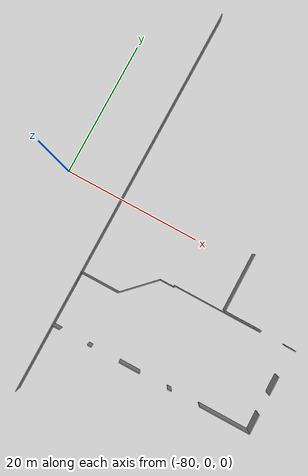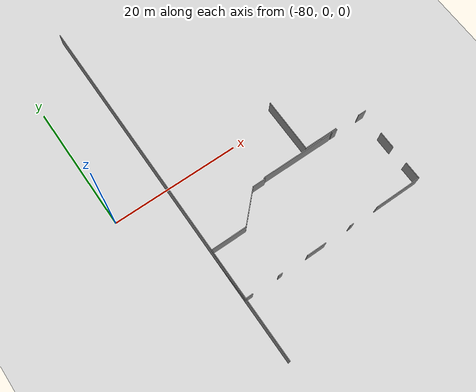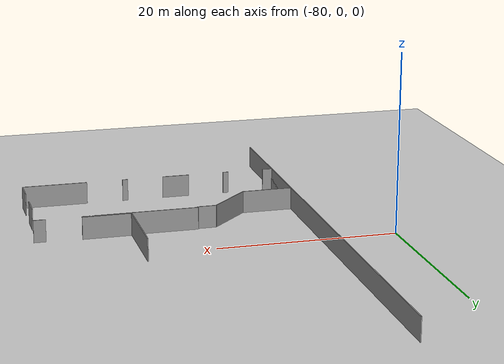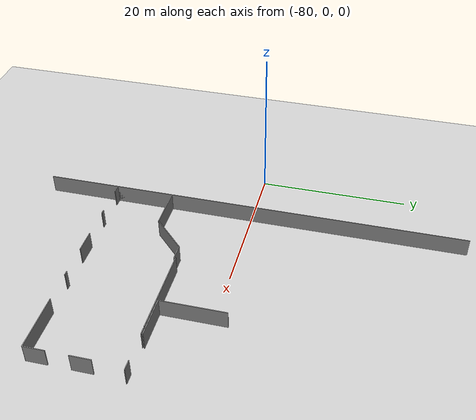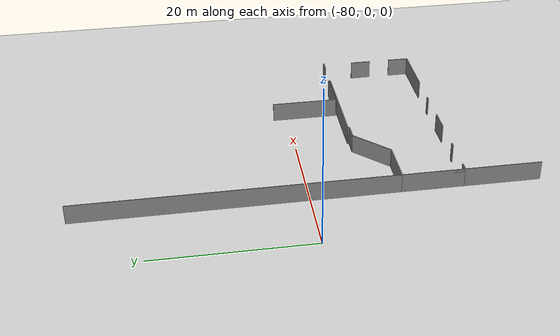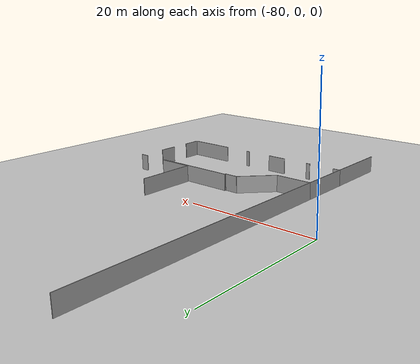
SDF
<sdf version="1.6">
 <world name="default">
  <model name="ground_plane">
   <static>1</static>
   <link name="link">
    <collision name="collision">
     <geometry><plane><normal>0 0 1</normal><size>100 100</size></plane></geometry>
     <surface><friction><ode><mu>100</mu><mu2>50</mu2></ode></friction></surface>
    </collision>
    <visual name="visual">
     <cast_shadows>0</cast_shadows>
     <geometry><plane><normal>0 0 1</normal><size>100 100</size></plane></geometry>
     <material>
      <script><uri>file://media/materials/scripts/gazebo.material</uri><name>Gazebo/Grey</name></script>
     </material>
    </visual>
   </link>
  </model>
  <model name="50041169">
   <static>1</static>
   <link name="Wall_36">
    <collision name="Wall_36_Collision">
     <geometry><box><size>5.38318967159 0.1 2.5</size></box></geometry>
     <pose>2.69159483579 0 1.25 0 0 0</pose>
    </collision>
    <visual name="Wall_36_Visual">
     <pose>2.69159483579 0 1.25 0 0 0</pose>
     <geometry><box><size>5.38318967159 0.1 2.5</size></box></geometry>
     <material>
      <script><uri>file://media/materials/scripts/gazebo.material</uri><name>Gazebo/Grey</name></script>
      <ambient>1 1 1 1</ambient>
     </material>
    </visual>
    <pose>24.6750790245 -35.5635179567 0 0 0 3.14159265359</pose>
   </link>
   <link name="Wall_37">
    <collision name="Wall_37_Collision">
     <geometry><box><size>8.57235347137 0.1 2.5</size></box></geometry>
     <pose>4.28617673568 0 1.25 0 0 0</pose>
    </collision>
    <visual name="Wall_37_Visual">
     <pose>4.28617673568 0 1.25 0 0 0</pose>
     <geometry><box><size>8.57235347137 0.1 2.5</size></box></geometry>
     <material>
      <script><uri>file://media/materials/scripts/gazebo.material</uri><name>Gazebo/Grey</name></script>
      <ambient>1 1 1 1</ambient>
     </material>
    </visual>
    <pose>19.291889353 -35.5635179567 0 0 0 1.57079632679</pose>
   </link>
   <link name="Wall_128">
    <collision name="Wall_128_Collision">
     <geometry><box><size>0.87644243586 0.1 2.5</size></box></geometry>
     <pose>0.43822121793 0 1.25 0 0 0</pose>
    </collision>
    <visual name="Wall_128_Visual">
     <pose>0.43822121793 0 1.25 0 0 0</pose>
     <geometry><box><size>0.87644243586 0.1 2.5</size></box></geometry>
     <material>
      <script><uri>file://media/materials/scripts/gazebo.material</uri><name>Gazebo/Grey</name></script>
      <ambient>1 1 1 1</ambient>
     </material>
    </visual>
    <pose>23.7806101075 -35.7722189075 0 0 0 0.0</pose>
   </link>
   <link name="Wall_129">
    <collision name="Wall_129_Collision">
     <geometry><box><size>1.32469247077 0.1 2.5</size></box></geometry>
     <pose>0.662346235385 0 1.25 0 0 0</pose>
    </collision>
    <visual name="Wall_129_Visual">
     <pose>0.662346235385 0 1.25 0 0 0</pose>
     <geometry><box><size>1.32469247077 0.1 2.5</size></box></geometry>
     <material>
      <script><uri>file://media/materials/scripts/gazebo.material</uri><name>Gazebo/Grey</name></script>
      <ambient>1 1 1 1</ambient>
     </material>
    </visual>
    <pose>28.5722265243 -35.7722189075 0 0 0 0.0</pose>
   </link>
   <link name="Wall_164">
    <collision name="Wall_164_Collision">
     <geometry><box><size>7.38844527947 0.1 2.5</size></box></geometry>
     <pose>3.69422263974 0 1.25 0 0 0</pose>
    </collision>
    <visual name="Wall_164_Visual">
     <pose>3.69422263974 0 1.25 0 0 0</pose>
     <geometry><box><size>7.38844527947 0.1 2.5</size></box></geometry>
     <material>
      <script><uri>file://media/materials/scripts/gazebo.material</uri><name>Gazebo/Grey</name></script>
      <ambient>1 1 1 1</ambient>
     </material>
    </visual>
    <pose>29.4807865639 -48.0487603621 0 0 0 3.14159265359</pose>
   </link>
   <link name="Wall_165">
    <collision name="Wall_165_Collision">
     <geometry><box><size>0.614677617966 0.1 2.5</size></box></geometry>
     <pose>0.307338808983 0 1.25 0 0 0</pose>
    </collision>
    <visual name="Wall_165_Visual">
     <pose>0.307338808983 0 1.25 0 0 0</pose>
     <geometry><box><size>0.614677617966 0.1 2.5</size></box></geometry>
     <material>
      <script><uri>file://media/materials/scripts/gazebo.material</uri><name>Gazebo/Grey</name></script>
      <ambient>1 1 1 1</ambient>
     </material>
    </visual>
    <pose>17.9486626128 -48.0487603621 0 0 0 3.14159265359</pose>
   </link>
   <link name="Wall_166">
    <collision name="Wall_166_Collision">
     <geometry><box><size>3.10347454077 0.1 2.5</size></box></geometry>
     <pose>1.55173727038 0 1.25 0 0 0</pose>
    </collision>
    <visual name="Wall_166_Visual">
     <pose>1.55173727038 0 1.25 0 0 0</pose>
     <geometry><box><size>3.10347454077 0.1 2.5</size></box></geometry>
     <material>
      <script><uri>file://media/materials/scripts/gazebo.material</uri><name>Gazebo/Grey</name></script>
      <ambient>1 1 1 1</ambient>
     </material>
    </visual>
    <pose>13.2084597514 -48.0487603621 0 0 0 3.14159265359</pose>
   </link>
   <link name="Wall_167">
    <collision name="Wall_167_Collision">
     <geometry><box><size>0.643240704302 0.1 2.5</size></box></geometry>
     <pose>0.321620352151 0 1.25 0 0 0</pose>
    </collision>
    <visual name="Wall_167_Visual">
     <pose>0.321620352151 0 1.25 0 0 0</pose>
     <geometry><box><size>0.643240704302 0.1 2.5</size></box></geometry>
     <material>
      <script><uri>file://media/materials/scripts/gazebo.material</uri><name>Gazebo/Grey</name></script>
      <ambient>1 1 1 1</ambient>
     </material>
    </visual>
    <pose>5.96752694451 -48.0487603621 0 0 0 3.14159265359</pose>
   </link>
   <link name="Wall_168">
    <collision name="Wall_168_Collision">
     <geometry><box><size>1.1536947939 0.1 2.5</size></box></geometry>
     <pose>0.576847396951 0 1.25 0 0 0</pose>
    </collision>
    <visual name="Wall_168_Visual">
     <pose>0.576847396951 0 1.25 0 0 0</pose>
     <geometry><box><size>1.1536947939 0.1 2.5</size></box></geometry>
     <material>
      <script><uri>file://media/materials/scripts/gazebo.material</uri><name>Gazebo/Grey</name></script>
      <ambient>1 1 1 1</ambient>
     </material>
    </visual>
    <pose>1.1536947939 -48.0487603621 0 0 0 3.14159265359</pose>
   </link>
   <link name="Wall_169">
    <collision name="Wall_169_Collision">
     <geometry><box><size>7.91108628591 0.1 2.5</size></box></geometry>
     <pose>3.95554314296 0 1.25 0 0 0</pose>
    </collision>
    <visual name="Wall_169_Visual">
     <pose>3.95554314296 0 1.25 0 0 0</pose>
     <geometry><box><size>7.91108628591 0.1 2.5</size></box></geometry>
     <material>
      <script><uri>file://media/materials/scripts/gazebo.material</uri><name>Gazebo/Grey</name></script>
      <ambient>1 1 1 1</ambient>
     </material>
    </visual>
    <pose>0.0 -48.0487603621 0 0 0 1.57079632679</pose>
   </link>
   <link name="Wall_170">
    <collision name="Wall_170_Collision">
     <geometry><box><size>5.67605651683 0.1 2.5</size></box></geometry>
     <pose>2.83802825841 0 1.25 0 0 0</pose>
    </collision>
    <visual name="Wall_170_Visual">
     <pose>2.83802825841 0 1.25 0 0 0</pose>
     <geometry><box><size>5.67605651683 0.1 2.5</size></box></geometry>
     <material>
      <script><uri>file://media/materials/scripts/gazebo.material</uri><name>Gazebo/Grey</name></script>
      <ambient>1 1 1 1</ambient>
     </material>
    </visual>
    <pose>0.0 -40.1376740761 0 0 0 0.0</pose>
   </link>
   <link name="Wall_171">
    <collision name="Wall_171_Collision">
     <geometry><box><size>5.84856655985 0.1 2.5</size></box></geometry>
     <pose>2.92428327992 0 1.25 0 0 0</pose>
    </collision>
    <visual name="Wall_171_Visual">
     <pose>2.92428327992 0 1.25 0 0 0</pose>
     <geometry><box><size>5.84856655985 0.1 2.5</size></box></geometry>
     <material>
      <script><uri>file://media/materials/scripts/gazebo.material</uri><name>Gazebo/Grey</name></script>
      <ambient>1 1 1 1</ambient>
     </material>
    </visual>
    <pose>5.67605651683 -40.1376740761 0 0 0 0.787239951535</pose>
   </link>
   <link name="Wall_172">
    <collision name="Wall_172_Collision">
     <geometry><box><size>2.0745686974 0.1 2.5</size></box></geometry>
     <pose>1.0372843487 0 1.25 0 0 0</pose>
    </collision>
    <visual name="Wall_172_Visual">
     <pose>1.0372843487 0 1.25 0 0 0</pose>
     <geometry><box><size>2.0745686974 0.1 2.5</size></box></geometry>
     <material>
      <script><uri>file://media/materials/scripts/gazebo.material</uri><name>Gazebo/Grey</name></script>
      <ambient>1 1 1 1</ambient>
     </material>
    </visual>
    <pose>9.80399375421 -35.9945031927 0 0 0 0.0</pose>
   </link>
   <link name="Wall_173">
    <collision name="Wall_173_Collision">
     <geometry><box><size>0.208574003783 0.1 2.5</size></box></geometry>
     <pose>0.104287001892 0 1.25 0 0 0</pose>
    </collision>
    <visual name="Wall_173_Visual">
     <pose>0.104287001892 0 1.25 0 0 0</pose>
     <geometry><box><size>0.208574003783 0.1 2.5</size></box></geometry>
     <material>
      <script><uri>file://media/materials/scripts/gazebo.material</uri><name>Gazebo/Grey</name></script>
      <ambient>1 1 1 1</ambient>
     </material>
    </visual>
    <pose>11.8785624516 -35.9945031927 0 0 0 1.57079632679</pose>
   </link>
   <link name="Wall_174">
    <collision name="Wall_174_Collision">
     <geometry><box><size>11.6614829954 0.1 2.5</size></box></geometry>
     <pose>5.83074149772 0 1.25 0 0 0</pose>
    </collision>
    <visual name="Wall_174_Visual">
     <pose>5.83074149772 0 1.25 0 0 0</pose>
     <geometry><box><size>11.6614829954 0.1 2.5</size></box></geometry>
     <material>
      <script><uri>file://media/materials/scripts/gazebo.material</uri><name>Gazebo/Grey</name></script>
      <ambient>1 1 1 1</ambient>
     </material>
    </visual>
    <pose>11.8785624516 -35.7859291889 0 0 0 0.0</pose>
   </link>
   <link name="Wall_175">
    <collision name="Wall_175_Collision">
     <geometry><box><size>2.70257575565 0.1 2.5</size></box></geometry>
     <pose>1.35128787783 0 1.25 0 0 0</pose>
    </collision>
    <visual name="Wall_175_Visual">
     <pose>1.35128787783 0 1.25 0 0 0</pose>
     <geometry><box><size>2.70257575565 0.1 2.5</size></box></geometry>
     <material>
      <script><uri>file://media/materials/scripts/gazebo.material</uri><name>Gazebo/Grey</name></script>
      <ambient>1 1 1 1</ambient>
     </material>
    </visual>
    <pose>29.4731697409 -39.7620377541 0 0 0 -1.57079632679</pose>
   </link>
   <link name="Wall_176">
    <collision name="Wall_176_Collision">
     <geometry><box><size>2.7533651113 0.1 2.5</size></box></geometry>
     <pose>1.37668255565 0 1.25 0 0 0</pose>
    </collision>
    <visual name="Wall_176_Visual">
     <pose>1.37668255565 0 1.25 0 0 0</pose>
     <geometry><box><size>2.7533651113 0.1 2.5</size></box></geometry>
     <material>
      <script><uri>file://media/materials/scripts/gazebo.material</uri><name>Gazebo/Grey</name></script>
      <ambient>1 1 1 1</ambient>
     </material>
    </visual>
    <pose>29.4731697409 -45.2954057862 0 0 0 -1.56802995458</pose>
   </link>
   <link name="Wall_434">
    <collision name="Wall_434_Collision">
     <geometry><box><size>57.7982938316 0.1 2.5</size></box></geometry>
     <pose>28.8991469158 0 1.25 0 0 0</pose>
    </collision>
    <visual name="Wall_434_Visual">
     <pose>28.8991469158 0 1.25 0 0 0</pose>
     <geometry><box><size>57.7982938316 0.1 2.5</size></box></geometry>
     <material>
      <script><uri>file://media/materials/scripts/gazebo.material</uri><name>Gazebo/Grey</name></script>
      <ambient>1 1 1 1</ambient>
     </material>
    </visual>
    <pose>0.0 -57.7982938316 0 0 0 1.57079632679</pose>
   </link>
   <pose>-71.5 28.8982938316 0 0 0 0</pose>
  </model>
 </world>
</sdf>
